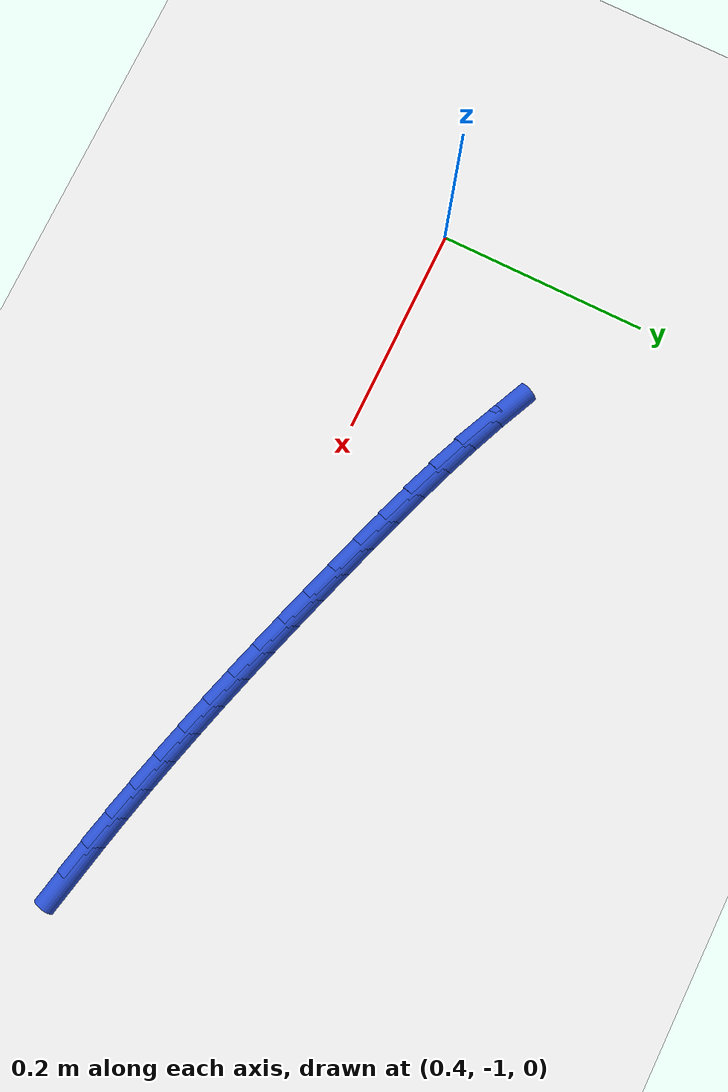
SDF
<sdf version="1.6">
 <world name="default">
  <model name="ground_plane">
   <static>1</static>
   <link name="link">
    <collision name="collision">
     <geometry><plane><normal>0 0 1</normal><size>100 100</size></plane></geometry>
     <surface><friction><ode><mu>100</mu><mu2>50</mu2></ode></friction></surface>
    </collision>
    <visual name="visual">
     <cast_shadows>0</cast_shadows>
     <geometry><plane><normal>0 0 1</normal><size>100 100</size></plane></geometry>
     <material>
      <script><uri>file://media/materials/scripts/gazebo.material</uri><name>Gazebo/WhiteGlow</name></script>
     </material>
    </visual>
   </link>
  </model>
  <model name="line">
   <link name="link_159">
    <pose>1.059194807413305 -1.0440075379583067 0.01 0 1.57 -0.20966860024220224</pose>
    <collision name="collision">
     <geometry><cylinder><radius>0.01</radius><length>0.08</length></cylinder></geometry>
    </collision>
    <visual name="visual">
     <material>
      <script><name>Gazebo/Blue</name><uri>file://media/materials/scripts/gazebo.material</uri></script>
     </material>
     <geometry><cylinder><radius>0.01</radius><length>0.08</length></cylinder></geometry>
    </visual>
   </link>
   <link name="link_160">
    <pose>1.0279625862626574 -1.0373614457987546 0.01 0 1.57 -0.22408867748638683</pose>
    <collision name="collision">
     <geometry><cylinder><radius>0.01</radius><length>0.08</length></cylinder></geometry>
    </collision>
    <visual name="visual">
     <material>
      <script><name>Gazebo/Blue</name><uri>file://media/materials/scripts/gazebo.material</uri></script>
     </material>
     <geometry><cylinder><radius>0.01</radius><length>0.08</length></cylinder></geometry>
    </visual>
   </link>
   <link name="link_161">
    <pose>0.996842056384607 -1.0302685632779414 0.01 0 1.57 -0.2376448412242032</pose>
    <collision name="collision">
     <geometry><cylinder><radius>0.01</radius><length>0.08</length></cylinder></geometry>
    </collision>
    <visual name="visual">
     <material>
      <script><name>Gazebo/Blue</name><uri>file://media/materials/scripts/gazebo.material</uri></script>
     </material>
     <geometry><cylinder><radius>0.01</radius><length>0.08</length></cylinder></geometry>
    </visual>
   </link>
   <link name="link_162">
    <pose>0.9658237066253628 -1.022755238562768 0.01 0 1.57 -0.2503276996961341</pose>
    <collision name="collision">
     <geometry><cylinder><radius>0.01</radius><length>0.08</length></cylinder></geometry>
    </collision>
    <visual name="visual">
     <material>
      <script><name>Gazebo/Blue</name><uri>file://media/materials/scripts/gazebo.material</uri></script>
     </material>
     <geometry><cylinder><radius>0.01</radius><length>0.08</length></cylinder></geometry>
    </visual>
   </link>
   <link name="link_163">
    <pose>0.9348980258311334 -1.0148478198201358 0.01 0 1.57 -0.26213016601085076</pose>
    <collision name="collision">
     <geometry><cylinder><radius>0.01</radius><length>0.08</length></cylinder></geometry>
    </collision>
    <visual name="visual">
     <material>
      <script><name>Gazebo/Blue</name><uri>file://media/materials/scripts/gazebo.material</uri></script>
     </material>
     <geometry><cylinder><radius>0.01</radius><length>0.08</length></cylinder></geometry>
    </visual>
   </link>
   <link name="link_164">
    <pose>0.9040555028481272 -1.0065726552169463 0.01 0 1.57 -0.27304718613164974</pose>
    <collision name="collision">
     <geometry><cylinder><radius>0.01</radius><length>0.08</length></cylinder></geometry>
    </collision>
    <visual name="visual">
     <material>
      <script><name>Gazebo/Blue</name><uri>file://media/materials/scripts/gazebo.material</uri></script>
     </material>
     <geometry><cylinder><radius>0.01</radius><length>0.08</length></cylinder></geometry>
    </visual>
   </link>
   <link name="link_165">
    <pose>0.8732866265225537 -0.9979560929200996 0.01 0 1.57 -0.2830754743683914</pose>
    <collision name="collision">
     <geometry><cylinder><radius>0.01</radius><length>0.08</length></cylinder></geometry>
    </collision>
    <visual name="visual">
     <material>
      <script><name>Gazebo/Blue</name><uri>file://media/materials/scripts/gazebo.material</uri></script>
     </material>
     <geometry><cylinder><radius>0.01</radius><length>0.08</length></cylinder></geometry>
    </visual>
   </link>
   <link name="link_166">
    <pose>0.8425818857006212 -0.9890244810964972 0.01 0 1.57 -0.29221326077632315</pose>
    <collision name="collision">
     <geometry><cylinder><radius>0.01</radius><length>0.08</length></cylinder></geometry>
    </collision>
    <visual name="visual">
     <material>
      <script><name>Gazebo/Blue</name><uri>file://media/materials/scripts/gazebo.material</uri></script>
     </material>
     <geometry><cylinder><radius>0.01</radius><length>0.08</length></cylinder></geometry>
    </visual>
   </link>
   <link name="link_167">
    <pose>0.8119317692285387 -0.9798041679130405 0.01 0 1.57 -0.30046005391416025</pose>
    <collision name="collision">
     <geometry><cylinder><radius>0.01</radius><length>0.08</length></cylinder></geometry>
    </collision>
    <visual name="visual">
     <material>
      <script><name>Gazebo/Blue</name><uri>file://media/materials/scripts/gazebo.material</uri></script>
     </material>
     <geometry><cylinder><radius>0.01</radius><length>0.08</length></cylinder></geometry>
    </visual>
   </link>
   <link name="link_168">
    <pose>0.7813267659525143 -0.9703215015366297 0.01 0 1.57 -0.30781642156150757</pose>
    <collision name="collision">
     <geometry><cylinder><radius>0.01</radius><length>0.08</length></cylinder></geometry>
    </collision>
    <visual name="visual">
     <material>
      <script><name>Gazebo/Blue</name><uri>file://media/materials/scripts/gazebo.material</uri></script>
     </material>
     <geometry><cylinder><radius>0.01</radius><length>0.08</length></cylinder></geometry>
    </visual>
   </link>
   <link name="link_169">
    <pose>0.750757364718757 -0.9606028301341665 0.01 0 1.57 -0.3142837912523202</pose>
    <collision name="collision">
     <geometry><cylinder><radius>0.01</radius><length>0.08</length></cylinder></geometry>
    </collision>
    <visual name="visual">
     <material>
      <script><name>Gazebo/Blue</name><uri>file://media/materials/scripts/gazebo.material</uri></script>
     </material>
     <geometry><cylinder><radius>0.01</radius><length>0.08</length></cylinder></geometry>
    </visual>
   </link>
   <link name="link_170">
    <pose>0.720214054373475 -0.9506745018725518 0.01 0 1.57 -0.31986427185270866</pose>
    <collision name="collision">
     <geometry><cylinder><radius>0.01</radius><length>0.08</length></cylinder></geometry>
    </collision>
    <visual name="visual">
     <material>
      <script><name>Gazebo/Blue</name><uri>file://media/materials/scripts/gazebo.material</uri></script>
     </material>
     <geometry><cylinder><radius>0.01</radius><length>0.08</length></cylinder></geometry>
    </visual>
   </link>
   <link name="link_171">
    <pose>0.6896873237628781 -0.9405628649186866 0.01 0 1.57 -0.32542747953894624</pose>
    <collision name="collision">
     <geometry><cylinder><radius>0.01</radius><length>0.08</length></cylinder></geometry>
    </collision>
    <visual name="visual">
     <material>
      <script><name>Gazebo/Blue</name><uri>file://media/materials/scripts/gazebo.material</uri></script>
     </material>
     <geometry><cylinder><radius>0.01</radius><length>0.08</length></cylinder></geometry>
    </visual>
   </link>
   <link name="link_172">
    <pose>0.6591824082853911 -0.9302697792713697 0.01 0 1.57 -0.33505875920768685</pose>
    <collision name="collision">
     <geometry><cylinder><radius>0.01</radius><length>0.08</length></cylinder></geometry>
    </collision>
    <visual name="visual">
     <material>
      <script><name>Gazebo/Blue</name><uri>file://media/materials/scripts/gazebo.material</uri></script>
     </material>
     <geometry><cylinder><radius>0.01</radius><length>0.08</length></cylinder></geometry>
    </visual>
   </link>
   <link name="link_173">
    <pose>0.628773899475375 -0.9196819319255171 0.01 0 1.57 -0.3499893299547557</pose>
    <collision name="collision">
     <geometry><cylinder><radius>0.01</radius><length>0.08</length></cylinder></geometry>
    </collision>
    <visual name="visual">
     <material>
      <script><name>Gazebo/Blue</name><uri>file://media/materials/scripts/gazebo.material</uri></script>
     </material>
     <geometry><cylinder><radius>0.01</radius><length>0.08</length></cylinder></geometry>
    </visual>
   </link>
   <link name="link_174">
    <pose>0.5985567605679165 -0.9086521805697387 0.01 0 1.57 -0.37028301583093887</pose>
    <collision name="collision">
     <geometry><cylinder><radius>0.01</radius><length>0.08</length></cylinder></geometry>
    </collision>
    <visual name="visual">
     <material>
      <script><name>Gazebo/Blue</name><uri>file://media/materials/scripts/gazebo.material</uri></script>
     </material>
     <geometry><cylinder><radius>0.01</radius><length>0.08</length></cylinder></geometry>
    </visual>
   </link>
   <link name="link_175">
    <pose>0.568625957523754 -0.8970333783664186 0.01 0 1.57 -0.396021980510587</pose>
    <collision name="collision">
     <geometry><cylinder><radius>0.01</radius><length>0.08</length></cylinder></geometry>
    </collision>
    <visual name="visual">
     <material>
      <script><name>Gazebo/Blue</name><uri>file://media/materials/scripts/gazebo.material</uri></script>
     </material>
     <geometry><cylinder><radius>0.01</radius><length>0.08</length></cylinder></geometry>
    </visual>
   </link>
   <link name="link_176">
    <pose>0.5390764563036253 -0.8846783784779408 0.01 0 1.57 -0.42728972914858476</pose>
    <collision name="collision">
     <geometry><cylinder><radius>0.01</radius><length>0.08</length></cylinder></geometry>
    </collision>
    <visual name="visual">
     <material>
      <script><name>Gazebo/Blue</name><uri>file://media/materials/scripts/gazebo.material</uri></script>
     </material>
     <geometry><cylinder><radius>0.01</radius><length>0.08</length></cylinder></geometry>
    </visual>
   </link>
  </model>
 </world>
</sdf>
